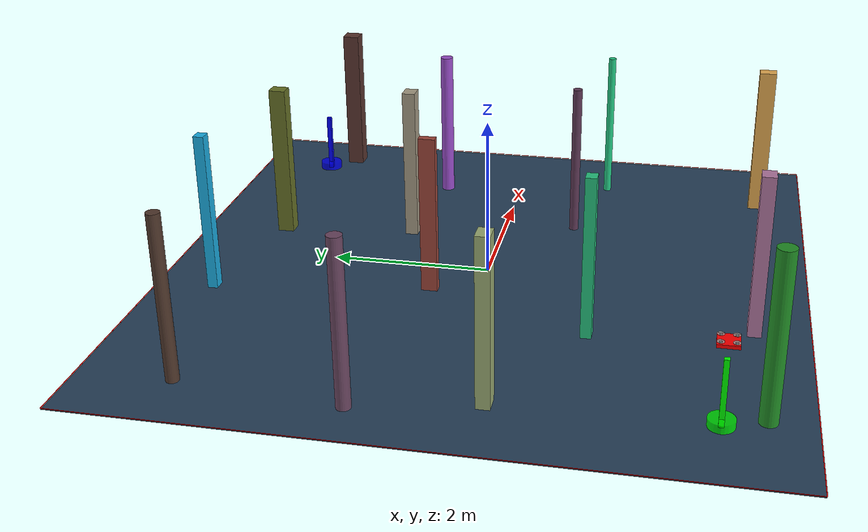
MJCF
<?xml version='1.0' encoding='utf-8'?>
<mujoco model="complex_uav_env">
  <compiler angle="degree" coordinate="local" inertiafromgeom="true" />
  <option integrator="RK4" timestep="0.01" />

  <visual>
    <headlight diffuse="0.6 0.6 0.6" ambient="0.3 0.3 0.3" />
    <rgba haze="0.15 0.25 0.35 1" />
    <global offwidth="2560" offheight="1440" />
  </visual>

  <asset>
    <texture type="skybox" builtin="gradient" rgb1="0.3 0.5 0.7" rgb2="0 0 0" width="512" height="3072" />
    <texture name="grid" type="2d" builtin="checker" rgb1="0.1 0.2 0.3" rgb2="0.2 0.3 0.4" width="512" height="512" />
    <material name="grid" texture="grid" texrepeat="1 1" />
  </asset>

  <worldbody>

    <geom name="ground" type="plane" size="4.0 4.0 0.1" material="grid" />
    <light name="light1" pos="0 0 4" dir="0 0 -1" diffuse="1 1 1" />

    <geom name="start_marker" type="cylinder" size="0.15 0.05" pos="-3.0 -3.0 0.05" rgba="0 1 0 0.8" />
    <geom name="start_pole" type="box" size="0.03 0.03 0.4" pos="-3.0 -3.0 0.4" rgba="0 1 0 1" />

    <geom name="goal_marker" type="cylinder" size="0.15 0.05" pos="3.0 3.0 0.05" rgba="0 0 1 0.8" />
    <geom name="goal_pole" type="box" size="0.03 0.03 0.4" pos="3.0 3.0 0.4" rgba="0 0 1 1" />

    <body name="chassis" pos="-3.0 -3.0 1.0">
      <joint type="free" name="root" />
      <geom type="box" size="0.12 0.12 0.02" rgba="1.0 0.0 0.0 1.0" mass="0.8" />

      <geom type="box" size="0.08 0.01 0.005" pos="0 0 0.01" rgba="0.3 0.3 0.3 1" />
      <geom type="box" size="0.01 0.08 0.005" pos="0 0 0.01" rgba="0.3 0.3 0.3 1" />

      <geom type="cylinder" size="0.015 0.02" pos="0.08 0.08 0.015" rgba="0.2 0.2 0.2 1" />
      <geom type="cylinder" size="0.015 0.02" pos="-0.08 0.08 0.015" rgba="0.2 0.2 0.2 1" />
      <geom type="cylinder" size="0.015 0.02" pos="0.08 -0.08 0.015" rgba="0.2 0.2 0.2 1" />
      <geom type="cylinder" size="0.015 0.02" pos="-0.08 -0.08 0.015" rgba="0.2 0.2 0.2 1" />

      <geom type="cylinder" size="0.04 0.002" pos="0.08 0.08 0.035" rgba="0.7 0.7 0.7 0.8" />
      <geom type="cylinder" size="0.04 0.002" pos="-0.08 0.08 0.035" rgba="0.7 0.7 0.7 0.8" />
      <geom type="cylinder" size="0.04 0.002" pos="0.08 -0.08 0.035" rgba="0.7 0.7 0.7 0.8" />
      <geom type="cylinder" size="0.04 0.002" pos="-0.08 -0.08 0.035" rgba="0.7 0.7 0.7 0.8" />

      <site name="motor1" pos="0.08 0.08 0" size="0.01" />
      <site name="motor2" pos="-0.08 0.08 0" size="0.01" />
      <site name="motor3" pos="0.08 -0.08 0" size="0.01" />
      <site name="motor4" pos="-0.08 -0.08 0" size="0.01" />
    </body>
    <geom name="test_obs_0" type="box" size="0.10503993609275268 0.08255879532598492 1.0" pos="0.9811680866888761 1.211457581749593 1.0" rgba="0.6468783183077585 0.6063764514136387 0.5185704850274763 1.0" />
    <geom name="test_obs_1" type="box" size="0.0887252769130131 0.11117646469487903 1.0" pos="2.6897130694809945 -3.383467668791734 1.0" rgba="0.8972682222243867 0.6689801314147407 0.32068506618131054 1.0" />
    <geom name="test_obs_2" type="box" size="0.05163860194156196 0.10141532286278926 1.0" pos="-0.6231750571381477 0.6051095074230012 1.0" rgba="0.60944347046781 0.2723169430027189 0.22639785634706852 1.0" />
    <geom name="test_obs_3" type="box" size="0.1050511086204213 0.08238416095850205 1.0" pos="-0.9975752799599963 -3.3408039880608547 1.0" rgba="0.6977297433236596 0.47056896208754395 0.6339158949420173 1.0" />
    <geom name="test_obs_4" type="box" size="0.09405785583777224 0.10584363968764174 1.0" pos="0.7580062713175919 2.9238130967668283 1.0" rgba="0.40394100438274416 0.44614478161189985 0.15235135746663478 1.0" />
    <geom name="test_obs_5" type="box" size="0.0741487139985553 0.06379662799245206 1.0" pos="-1.0258458363069174 3.26931320319941 1.0" rgba="0.10531215370457475 0.6882343781981887 0.8993045163419031 1.0" />
    <geom name="test_obs_6" type="cylinder" size="0.0605437371518587 1.0" pos="1.4719544014424142 -0.9253213770567789 1.0" rgba="0.3595501080777218 0.21760454859072242 0.3294720457864361 1.0" />
    <geom name="test_obs_7" type="box" size="0.11148163498749705 0.08134730523327678 1.0" pos="-3.0508339332340486 -0.5469378540579042 1.0" rgba="0.6047048979866478 0.6708633780326815 0.44873191639773435 1.0" />
    <geom name="test_obs_8" type="cylinder" size="0.07790363538896831 1.0" pos="-3.214382262602088 2.870962691867417 1.0" rgba="0.31957050455441016 0.22187366001894226 0.17617631407809908 1.0" />
    <geom name="test_obs_9" type="cylinder" size="0.0851370816111273 1.0" pos="-3.383547133076725 0.8924462818538239 1.0" rgba="0.4156880407865522 0.27408886774245006 0.37832368709576847 1.0" />
    <geom name="test_obs_10" type="cylinder" size="0.05088392234670766 1.0" pos="2.912762934640642 -1.240735540101809 1.0" rgba="0.13951115272597125 0.7755086981622132 0.5111216890955539 1.0" />
    <geom name="test_obs_11" type="box" size="0.11304617324434894 0.11152466528746666 1.0" pos="3.3529129305784773 2.6835076174885297 1.0" rgba="0.34870755686571253 0.20674067463570767 0.18410612027867357 1.0" />
    <geom name="test_obs_12" type="cylinder" size="0.10480702214938846 1.0" pos="-2.84459543010029 -3.4772205014369444 1.0" rgba="0.12986660486115947 0.5522877714840967 0.14839951833288056 1.0" />
    <geom name="test_obs_13" type="cylinder" size="0.08552958235218308 1.0" pos="2.532306724962195 1.0640065131063805 1.0" rgba="0.5932750187680905 0.301902203769106 0.7803582179145668 1.0" />
    <geom name="test_obs_14" type="box" size="0.08019465828628818 0.06578241177278298 1.0" pos="-1.4101739159955342 -1.430588400565028 1.0" rgba="0.15060559934534581 0.7637822183413746 0.4949857785719525 1.0" />
  <geom name="boundary_north" type="box" size="4.0 0.005 0.002" pos="0 4.0 0.002" rgba="1.0 0.0 0.0 1.0" /><geom name="boundary_south" type="box" size="4.0 0.005 0.002" pos="0 -4.0 0.002" rgba="1.0 0.0 0.0 1.0" /><geom name="boundary_east" type="box" size="0.005 4.0 0.002" pos="4.0 0 0.002" rgba="1.0 0.0 0.0 1.0" /><geom name="boundary_west" type="box" size="0.005 4.0 0.002" pos="-4.0 0 0.002" rgba="1.0 0.0 0.0 1.0" /></worldbody>

  <actuator>
    <motor name="m1" gear="0 0 1 0 0 0" site="motor1" />
    <motor name="m2" gear="0 0 1 0 0 0" site="motor2" />
    <motor name="m3" gear="0 0 1 0 0 0" site="motor3" />
    <motor name="m4" gear="0 0 1 0 0 0" site="motor4" />
  </actuator>
</mujoco>
